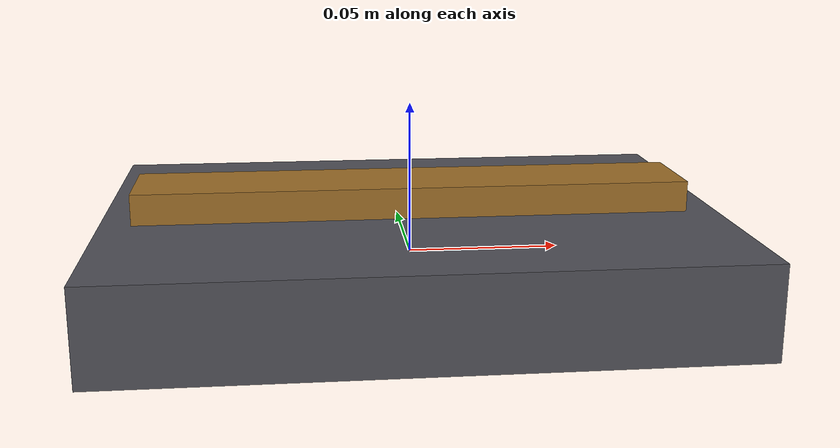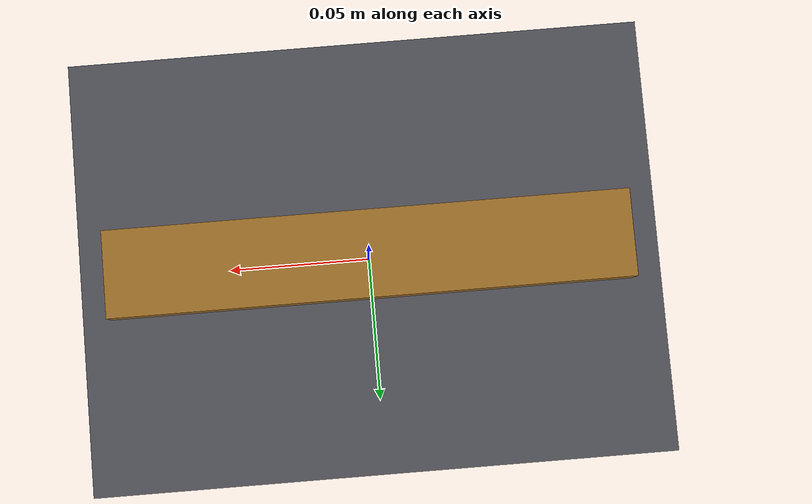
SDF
<?xml version="1.0" ?>
<!-- Weld piece model.  Spawned by spawn_welds.py with a unique name.
     The piece is a flat metal tile representing a welded joint.       -->
<sdf version="1.9">
  <model name="weld_piece">
    <pose>0 0 0 0 0 0</pose>

    <link name="link">
      <inertial>
        <mass>0.5</mass>
        <inertia>
          <ixx>0.00042</ixx><ixy>0</ixy><ixz>0</ixz>
          <iyy>0.00042</iyy><iyz>0</iyz>
          <izz>0.00083</izz>
        </inertia>
      </inertial>

      <!-- Physical shape: 20 cm × 15 cm × 3 cm tile -->
      <collision name="collision">
        <geometry>
          <box><size>0.20 0.15 0.03</size></box>
        </geometry>
        <surface>
          <friction>
            <ode><mu>0.6</mu><mu2>0.6</mu2></ode>
          </friction>
        </surface>
      </collision>

      <!-- Visual: dark steel plate with weld bead ridge on top -->
      <visual name="body">
        <geometry>
          <box><size>0.20 0.15 0.03</size></box>
        </geometry>
        <material>
          <ambient>0.25 0.25 0.28 1</ambient>
          <diffuse>0.30 0.30 0.33 1</diffuse>
          <specular>0.5 0.5 0.5 1</specular>
        </material>
      </visual>

      <!-- Weld bead (ridge along centre) -->
      <visual name="bead">
        <pose>0 0 0.02 0 0 0</pose>
        <geometry>
          <box><size>0.18 0.03 0.01</size></box>
        </geometry>
        <material>
          <ambient>0.55 0.38 0.12 1</ambient>
          <diffuse>0.60 0.42 0.15 1</diffuse>
          <specular>0.3 0.3 0.1 1</specular>
        </material>
      </visual>
    </link>
  </model>
</sdf>
